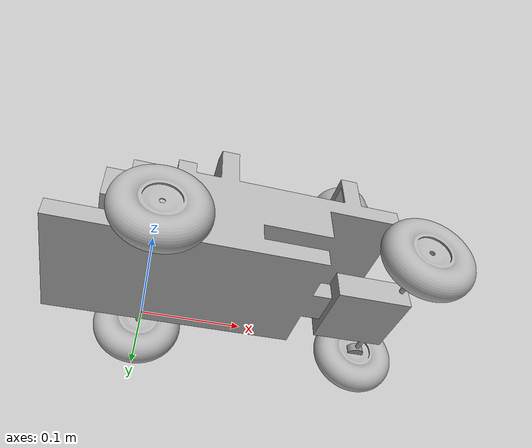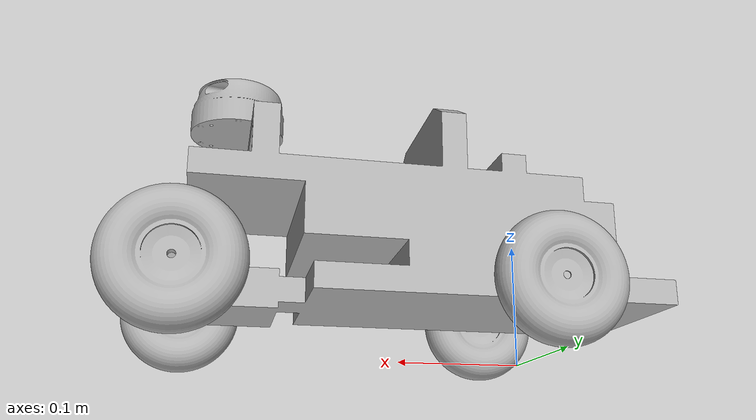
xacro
<?xml version="1.0" ?>
<robot name="src" xmlns:xacro="http://www.ros.org/wiki/xacro">

  <xacro:include filename="$(find test_description)/urdf/materials.xacro" />
  <xacro:include filename="$(find test_description)/urdf/src.gazebo" />

  <link name="base_footprint" />

  <link name="base_link">
    <inertial>
      <origin rpy="0 0 0" xyz="0.0769978638261129 -2.8140626253308825e-07 0.09495983966151514"/>
      <mass value="31.702953623812817"/>
      <inertia ixx="0.094192" ixy="0.0" ixz="-0.013351" iyy="0.285557" iyz="-0.0" izz="0.298406"/>
    </inertial>
    <visual>
      <origin xyz="0 0 0" rpy="0 0 0"/>
      <geometry>
        <mesh filename="package://test_description/meshes/base_link.stl" scale="0.001 0.001 0.001"/>
      </geometry>
      <material name="silver"/>
    </visual>
    <collision>
      <origin xyz="0 0 0" rpy="0 0 0"/>
      <geometry>
        <mesh filename="package://test_description/meshes/base_link.stl" scale="0.001 0.001 0.001"/>
      </geometry>
    </collision>
  </link>

  <joint name="base_footprint_joint" type="fixed">
    <parent link="base_footprint"/>
    <child link="base_link"/>
    <origin xyz="0 0 0" rpy="0 0 0"/>
  </joint>

  <link name="right_rear_wheel">
    <inertial>
      <origin rpy="0 0 0" xyz="7.159278319822104e-09 -0.009000281406262398 -3.3086341685167886e-07"/>
      <mass value="0.20069792517970372"/>
      <inertia ixx="0.00014" ixy="0.0" ixz="-0.0" iyy="0.00025" iyz="0.0" izz="0.00014"/>
    </inertial>
    <visual>
      <origin rpy="0 0 0" xyz="-0.0 0.089625 -0.050754"/>
      <geometry>
        <mesh filename="package://test_description/meshes/right_rear_wheel.stl" scale="0.001 0.001 0.001"/>
      </geometry>
      <material name="silver"/>
    </visual>
    <collision>
      <origin rpy="0 0 0" xyz="-0.0 0.089625 -0.050754"/>
      <geometry>
        <mesh filename="package://test_description/meshes/right_rear_wheel.stl" scale="0.001 0.001 0.001"/>
      </geometry>
    </collision>
  </link>

  <joint name="right_rear_wheel_joint" type="continuous">
    <origin rpy="0 0 0" xyz="0.0 -0.089625 0.050754"/>
    <parent link="base_link"/>
    <child link="right_rear_wheel"/>
    <axis xyz="0.0 1.0 0.0"/>
    <limit effort="10" velocity="100" />
  </joint>

  <link name="left_rear_wheel">
    <inertial>
      <origin rpy="0 0 0" xyz="7.1592785340951474e-09 0.008999718593737882 -3.3086341697657895e-07"/>
      <mass value="0.20069792517970372"/>
      <inertia ixx="0.00014" ixy="0.0" ixz="-0.0" iyy="0.00025" iyz="-0.0" izz="0.00014"/>
    </inertial>
    <visual>
      <origin rpy="0 0 0" xyz="-0.0 -0.089625 -0.050754"/>
      <geometry>
        <mesh filename="package://test_description/meshes/left_rear_wheel.stl" scale="0.001 0.001 0.001"/>
      </geometry>
      <material name="silver"/>
    </visual>
    <collision>
      <origin rpy="0 0 0" xyz="-0.0 -0.089625 -0.050754"/>
      <geometry>
        <mesh filename="package://test_description/meshes/left_rear_wheel.stl" scale="0.001 0.001 0.001"/>
      </geometry>
    </collision>
  </link>

  <joint name="left_rear_wheel_joint" type="continuous">
    <origin rpy="0 0 0" xyz="0.0 0.089625 0.050754"/>
    <parent link="base_link"/>
    <child link="left_rear_wheel"/>
    <axis xyz="0.0 1.0 0.0"/>
    <limit effort="10" velocity="100" />
  </joint>

  <link name="right_steering_hinge">
    <inertial>
      <origin xyz="0 0 0" rpy="0 0 0" />
      <mass value="0.100"/>
      <inertia ixx="4E-06" ixy="0"          ixz="0"
                           iyy="4E-06"      iyz="0"
                                            izz="4E-06" />
      <geometry>
        <cylinder radius="0.01" length="0.01"/>
      </geometry>
    </inertial>
    <visual>
      <origin xyz="0 0 0" rpy="0 0 0" />
      <geometry>
        <cylinder radius="0.01" length="0.01"/>
      </geometry>
      <material name="grey" />
    </visual>
  </link>

  <joint name="right_steering_hinge_joint" type="revolute">
    <origin rpy="0 0 0" xyz="0.275 -0.08875 0.050754"/>
    <parent link="base_link" />
    <child link="right_steering_hinge" />
    <axis xyz="0 0 1" />
    <limit lower="-0.7853" upper="0.7853" effort="10" velocity="100" />
  </joint>

  <link name="right_front_wheel">
    <inertial>
      <origin rpy="0 0 0" xyz="7.159277781720874e-09 -0.009000281406262675 -3.3086341699045674e-07"/>
      <mass value="0.20069792517970372"/>
      <inertia ixx="0.00014" ixy="0.0" ixz="-0.0" iyy="0.00025" iyz="-0.0" izz="0.00014"/>
    </inertial>
    <visual>
      <origin rpy="0 0 0" xyz="-0.275 0.08875 -0.050754"/>
      <geometry>
        <mesh filename="package://test_description/meshes/right_front_wheel.stl" scale="0.001 0.001 0.001"/>
      </geometry>
      <material name="silver"/>
    </visual>
    <collision>
      <origin rpy="0 0 0" xyz="-0.275 0.08875 -0.050754"/>
      <geometry>
        <mesh filename="package://test_description/meshes/right_front_wheel.stl" scale="0.001 0.001 0.001"/>
      </geometry>
    </collision>
  </link>

  <joint name="right_front_wheel_joint" type="continuous">
    <origin rpy="0 1.5707 0" xyz="0 0 0"/>
    <parent link="right_steering_hinge"/>
    <child link="right_front_wheel"/>
    <axis xyz="0.0 1.0 0.0"/>
    <limit effort="10" velocity="100" />
  </joint>

  <link name="left_steering_hinge">
    <inertial>
      <origin xyz="0 0 0" rpy="0 0 0" />
      <mass value="0.100"/>
      <inertia ixx="4E-06" ixy="0"          ixz="0"
                           iyy="4E-06"      iyz="0"
                                            izz="4E-06" />
      <geometry>
        <cylinder radius="0.01" length="0.01"/>
      </geometry>
    </inertial>
    <visual>
      <origin xyz="0 0 0" rpy="0 0 0" />
      <geometry>
        <cylinder radius="0.01" length="0.01"/>
      </geometry>
      <material name="grey" />
    </visual>
  </link>

  <joint name="left_steering_hinge_joint" type="revolute">
    <origin rpy="0 0 0" xyz="0.275 0.08875 0.050754"/>
    <parent link="base_link" />
    <child link="left_steering_hinge" />
    <axis xyz="0 0 1" />
    <limit lower="-1.0" upper="1.0" effort="10" velocity="100" />
  </joint>

  <link name="left_front_wheel">
    <inertial>
      <origin rpy="0 0 0" xyz="7.1592781147877815e-09 0.008999718593737646 -3.30863420112959e-07"/>
      <mass value="0.20069792517970372"/>
      <inertia ixx="0.00014" ixy="-0.0" ixz="-0.0" iyy="0.00025" iyz="-0.0" izz="0.00014"/>
    </inertial>
    <visual>
      <origin rpy="0 0 0" xyz="-0.275 -0.08875 -0.050754"/>
      <geometry>
        <mesh filename="package://test_description/meshes/left_front_wheel.stl" scale="0.001 0.001 0.001"/>
      </geometry>
      <material name="silver"/>
    </visual>
    <collision>
      <origin rpy="0 0 0" xyz="-0.275 -0.08875 -0.050754"/>
      <geometry>
        <mesh filename="package://test_description/meshes/left_front_wheel.stl" scale="0.001 0.001 0.001"/>
      </geometry>
    </collision>
  </link>

  <joint name="left_front_wheel_joint" type="continuous">
    <origin rpy="0 1.5707 0" xyz="0 0 0"/>
    <parent link="left_steering_hinge"/>
    <child link="left_front_wheel"/>
    <axis xyz="0.0 1.0 0.0"/>
    <limit effort="10" velocity="100" />
  </joint>

  <link name="laser">
    <inertial>
      <origin rpy="0 0 0" xyz="0.0 0.0 0.0"/>
      <mass value="0.04195569019892212"/>
      <inertia ixx="2.3e-05" ixy="-0.0" ixz="-1e-06" iyy="2.4e-05" iyz="-0.0" izz="3.4e-05"/>
    </inertial>
    <visual>
      <origin rpy="0 0 0" xyz="0.0 0.0 0.0"/>
      <geometry>
        <mesh filename="package://test_description/meshes/laser.stl" scale="0.001 0.001 0.001"/>
      </geometry>
      <material name="silver"/>
    </visual>
    <collision>
      <origin rpy="0 0 0" xyz="0.0 0.0 0.0"/>
      <geometry>
        <mesh filename="package://test_description/meshes/laser.stl" scale="0.001 0.001 0.001"/>
      </geometry>
    </collision>
  </link>

  <joint name="laser_joint" type="fixed">
    <origin rpy="0 0 0" xyz="0 0 0"/>
    <parent link="base_link"/>
    <child link="laser"/>
  </joint>

</robot>

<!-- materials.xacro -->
<robot name="src" xmlns:xacro="http://www.ros.org/wiki/xacro" >

<material name="silver">
  <color rgba="0.700 0.700 0.700 1.000"/>
</material>

</robot>

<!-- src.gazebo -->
<robot name="src" xmlns:xacro="http://www.ros.org/wiki/xacro" >

  <xacro:property name="body_color" value="Gazebo/Silver" />
  <xacro:property name="wheel_color" value="Gazebo/Black" />
  <xacro:property name="laser_color" value="Gazebo/DarkGrey" />

  <gazebo reference="base_link">
    <material>${body_color}</material>
    <mu1>100.2</mu1>
    <mu2>100.2</mu2>
    <fdir1 value="1 0 0" />
    <selfCollide>true</selfCollide>
    <gravity>true</gravity>
  </gazebo>

  <gazebo reference="right_rear_wheel">
    <material>${wheel_color}</material>
    <mu1>1000.0</mu1>
    <mu2>1000.0</mu2>
    <fdir1 value="1 0 0" />
    <selfCollide>true</selfCollide>
  </gazebo>

  <gazebo reference="left_rear_wheel">
    <material>${wheel_color}</material>
    <mu1>1000.0</mu1>
    <mu2>1000.0</mu2>
    <fdir1 value="1 0 0" />
    <selfCollide>true</selfCollide>
  </gazebo>

  <gazebo reference="right_front_wheel">
    <material>${wheel_color}</material>
    <mu1>1000.0</mu1>
    <mu2>1000.0</mu2>
    <fdir1 value="1 0 0" />
    <selfCollide>true</selfCollide>
  </gazebo>

  <gazebo reference="left_front_wheel">
    <material>${wheel_color}</material>
    <mu1>1000.0</mu1>
    <mu2>1000.0</mu2>
    <fdir1 value="1 0 0" />
    <selfCollide>true</selfCollide>
  </gazebo>

  <gazebo reference="laser">
    <material>${laser_color}</material>
    <mu1>0.2</mu1>
    <mu2>0.2</mu2>
    <selfCollide>true</selfCollide>
  </gazebo>

  <ros2_control name="GazeboSystem" type="system">
    <hardware>
      <plugin>gazebo_ros2_control/GazeboSystem</plugin>
    </hardware>
    <!-- velocity controller -->
    <joint name="left_rear_wheel_joint">
      <command_interface name="velocity"/>
      <state_interface name="position"/>
      <state_interface name="velocity"/>
      <state_interface name="effort"/>
    </joint>
    <joint name="right_rear_wheel_joint">
      <command_interface name="velocity"/>
      <state_interface name="position"/>
      <state_interface name="velocity"/>
      <state_interface name="effort"/>
    </joint>
    <joint name="left_front_wheel_joint">
      <command_interface name="velocity"/>
      <state_interface name="position"/>
      <state_interface name="velocity"/>
      <state_interface name="effort"/>
    </joint>
    <joint name="right_front_wheel_joint">
      <command_interface name="velocity"/>
      <state_interface name="position"/>
      <state_interface name="velocity"/>
      <state_interface name="effort"/>
    </joint>
    <!-- position controller for steering -->
    <joint name="left_steering_hinge_joint">
      <command_interface name="position">
        <param name="min">-1</param>
        <param name="max">1</param>
      </command_interface>
      <state_interface name="position"/>
      <state_interface name="velocity"/>
      <state_interface name="effort"/>
    </joint>
    <joint name="right_steering_hinge_joint">
      <command_interface name="position">
        <param name="min">-1</param>
        <param name="max">1</param>
      </command_interface>
      <state_interface name="position"/>
      <state_interface name="velocity"/>
      <state_interface name="effort"/>
    </joint>
    <!-- wanted to add ros2 control's imu -->
    <!-- but there's no option for imu covariance setting -->
  </ros2_control>

  <gazebo>
    <plugin filename="libgazebo_ros2_control.so" name="gazebo_ros2_control">
      <parameters>$(find test_description)/config/ackermann_controller.yaml</parameters>
    </plugin>
  </gazebo>

</robot>
